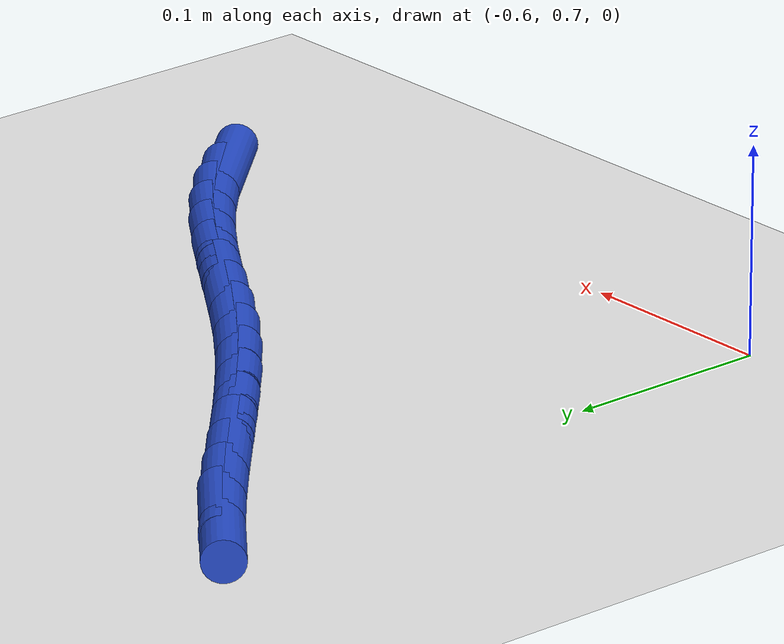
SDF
<sdf version="1.6">
 <world name="default">
  <model name="ground_plane">
   <static>1</static>
   <link name="link">
    <collision name="collision">
     <geometry><plane><normal>0 0 1</normal><size>100 100</size></plane></geometry>
     <surface><friction><ode><mu>100</mu><mu2>50</mu2></ode></friction></surface>
    </collision>
    <visual name="visual">
     <cast_shadows>0</cast_shadows>
     <geometry><plane><normal>0 0 1</normal><size>100 100</size></plane></geometry>
     <material>
      <script><uri>file://media/materials/scripts/gazebo.material</uri><name>Gazebo/WhiteGlow</name></script>
     </material>
    </visual>
   </link>
  </model>
  <model name="line">
   <link name="link_32">
    <pose>-0.29188922006585105 0.7497087334957746 0.01 0 1.57 -0.8264946027217694</pose>
    <collision name="collision">
     <geometry><cylinder><radius>0.01</radius><length>0.08</length></cylinder></geometry>
    </collision>
    <visual name="visual">
     <material>
      <script><name>Gazebo/Blue</name><uri>file://media/materials/scripts/gazebo.material</uri></script>
     </material>
     <geometry><cylinder><radius>0.01</radius><length>0.08</length></cylinder></geometry>
    </visual>
   </link>
   <link name="link_33">
    <pose>-0.3085845072054865 0.7678359059353737 0.01 0 1.57 -0.7543454025134546</pose>
    <collision name="collision">
     <geometry><cylinder><radius>0.01</radius><length>0.08</length></cylinder></geometry>
    </collision>
    <visual name="visual">
     <material>
      <script><name>Gazebo/Blue</name><uri>file://media/materials/scripts/gazebo.material</uri></script>
     </material>
     <geometry><cylinder><radius>0.01</radius><length>0.08</length></cylinder></geometry>
    </visual>
   </link>
   <link name="link_34">
    <pose>-0.3265219029304062 0.7846925046535169 0.01 0 1.57 -0.6880054036686947</pose>
    <collision name="collision">
     <geometry><cylinder><radius>0.01</radius><length>0.08</length></cylinder></geometry>
    </collision>
    <visual name="visual">
     <material>
      <script><name>Gazebo/Blue</name><uri>file://media/materials/scripts/gazebo.material</uri></script>
     </material>
     <geometry><cylinder><radius>0.01</radius><length>0.08</length></cylinder></geometry>
    </visual>
   </link>
   <link name="link_35">
    <pose>-0.3456320414955044 0.8004008156749937 0.01 0 1.57 -0.6392162142944259</pose>
    <collision name="collision">
     <geometry><cylinder><radius>0.01</radius><length>0.08</length></cylinder></geometry>
    </collision>
    <visual name="visual">
     <material>
      <script><name>Gazebo/Blue</name><uri>file://media/materials/scripts/gazebo.material</uri></script>
     </material>
     <geometry><cylinder><radius>0.01</radius><length>0.08</length></cylinder></geometry>
    </visual>
   </link>
   <link name="link_36">
    <pose>-0.3656754010465393 0.8152995711420333 0.01 0 1.57 -0.6082472600852731</pose>
    <collision name="collision">
     <geometry><cylinder><radius>0.01</radius><length>0.08</length></cylinder></geometry>
    </collision>
    <visual name="visual">
     <material>
      <script><name>Gazebo/Blue</name><uri>file://media/materials/scripts/gazebo.material</uri></script>
     </material>
     <geometry><cylinder><radius>0.01</radius><length>0.08</length></cylinder></geometry>
    </visual>
   </link>
   <link name="link_37">
    <pose>-0.38640658987141224 0.8297349699163937 0.01 0 1.57 -0.5945941688032522</pose>
    <collision name="collision">
     <geometry><cylinder><radius>0.01</radius><length>0.08</length></cylinder></geometry>
    </collision>
    <visual name="visual">
     <material>
      <script><name>Gazebo/Blue</name><uri>file://media/materials/scripts/gazebo.material</uri></script>
     </material>
     <geometry><cylinder><radius>0.01</radius><length>0.08</length></cylinder></geometry>
    </visual>
   </link>
   <link name="link_38">
    <pose>-0.40758021625802465 0.8440532108598324 0.01 0 1.57 -0.5976636535230972</pose>
    <collision name="collision">
     <geometry><cylinder><radius>0.01</radius><length>0.08</length></cylinder></geometry>
    </collision>
    <visual name="visual">
     <material>
      <script><name>Gazebo/Blue</name><uri>file://media/materials/scripts/gazebo.material</uri></script>
     </material>
     <geometry><cylinder><radius>0.01</radius><length>0.08</length></cylinder></geometry>
    </visual>
   </link>
   <link name="link_39">
    <pose>-0.42895088849427787 0.8586004928341079 0.01 0 1.57 -0.6168965279006676</pose>
    <collision name="collision">
     <geometry><cylinder><radius>0.01</radius><length>0.08</length></cylinder></geometry>
    </collision>
    <visual name="visual">
     <material>
      <script><name>Gazebo/Blue</name><uri>file://media/materials/scripts/gazebo.material</uri></script>
     </material>
     <geometry><cylinder><radius>0.01</radius><length>0.08</length></cylinder></geometry>
    </visual>
   </link>
   <link name="link_40">
    <pose>-0.4502732148680729 0.8737230147009769 0.01 0 1.57 -0.6514691453298563</pose>
    <collision name="collision">
     <geometry><cylinder><radius>0.01</radius><length>0.08</length></cylinder></geometry>
    </collision>
    <visual name="visual">
     <material>
      <script><name>Gazebo/Blue</name><uri>file://media/materials/scripts/gazebo.material</uri></script>
     </material>
     <geometry><cylinder><radius>0.01</radius><length>0.08</length></cylinder></geometry>
    </visual>
   </link>
   <link name="link_41">
    <pose>-0.4713052228606581 0.8897604502327771 0.01 0 1.57 -0.6899381625758085</pose>
    <collision name="collision">
     <geometry><cylinder><radius>0.01</radius><length>0.08</length></cylinder></geometry>
    </collision>
    <visual name="visual">
     <material>
      <script><name>Gazebo/Blue</name><uri>file://media/materials/scripts/gazebo.material</uri></script>
     </material>
     <geometry><cylinder><radius>0.01</radius><length>0.08</length></cylinder></geometry>
    </visual>
   </link>
   <link name="link_42">
    <pose>-0.49194212056158304 0.9067906817073801 0.01 0 1.57 -0.7182182246020294</pose>
    <collision name="collision">
     <geometry><cylinder><radius>0.01</radius><length>0.08</length></cylinder></geometry>
    </collision>
    <visual name="visual">
     <material>
      <script><name>Gazebo/Blue</name><uri>file://media/materials/scripts/gazebo.material</uri></script>
     </material>
     <geometry><cylinder><radius>0.01</radius><length>0.08</length></cylinder></geometry>
    </visual>
   </link>
   <link name="link_43">
    <pose>-0.5122598226105306 0.9245467362631078 0.01 0 1.57 -0.7359224903440341</pose>
    <collision name="collision">
     <geometry><cylinder><radius>0.01</radius><length>0.08</length></cylinder></geometry>
    </collision>
    <visual name="visual">
     <material>
      <script><name>Gazebo/Blue</name><uri>file://media/materials/scripts/gazebo.material</uri></script>
     </material>
     <geometry><cylinder><radius>0.01</radius><length>0.08</length></cylinder></geometry>
    </visual>
   </link>
   <link name="link_44">
    <pose>-0.5323465757926781 0.9427381067294724 0.01 0 1.57 -0.7434201676575527</pose>
    <collision name="collision">
     <geometry><cylinder><radius>0.01</radius><length>0.08</length></cylinder></geometry>
    </collision>
    <visual name="visual">
     <material>
      <script><name>Gazebo/Blue</name><uri>file://media/materials/scripts/gazebo.material</uri></script>
     </material>
     <geometry><cylinder><radius>0.01</radius><length>0.08</length></cylinder></geometry>
    </visual>
   </link>
   <link name="link_45">
    <pose>-0.5522906268932026 0.9610742859359854 0.01 0 1.57 -0.7408082115172868</pose>
    <collision name="collision">
     <geometry><cylinder><radius>0.01</radius><length>0.08</length></cylinder></geometry>
    </collision>
    <visual name="visual">
     <material>
      <script><name>Gazebo/Blue</name><uri>file://media/materials/scripts/gazebo.material</uri></script>
     </material>
     <geometry><cylinder><radius>0.01</radius><length>0.08</length></cylinder></geometry>
    </visual>
   </link>
   <link name="link_46">
    <pose>-0.5721802226972806 0.9792647667121582 0.01 0 1.57 -0.7278913982920897</pose>
    <collision name="collision">
     <geometry><cylinder><radius>0.01</radius><length>0.08</length></cylinder></geometry>
    </collision>
    <visual name="visual">
     <material>
      <script><name>Gazebo/Blue</name><uri>file://media/materials/scripts/gazebo.material</uri></script>
     </material>
     <geometry><cylinder><radius>0.01</radius><length>0.08</length></cylinder></geometry>
    </visual>
   </link>
   <link name="link_47">
    <pose>-0.5921036099900893 0.9970190418875027 0.01 0 1.57 -0.704173968811788</pose>
    <collision name="collision">
     <geometry><cylinder><radius>0.01</radius><length>0.08</length></cylinder></geometry>
    </collision>
    <visual name="visual">
     <material>
      <script><name>Gazebo/Blue</name><uri>file://media/materials/scripts/gazebo.material</uri></script>
     </material>
     <geometry><cylinder><radius>0.01</radius><length>0.08</length></cylinder></geometry>
    </visual>
   </link>
   <link name="link_48">
    <pose>-0.6121490355568059 1.0140466042915302 0.01 0 1.57 -0.6688667619999197</pose>
    <collision name="collision">
     <geometry><cylinder><radius>0.01</radius><length>0.08</length></cylinder></geometry>
    </collision>
    <visual name="visual">
     <material>
      <script><name>Gazebo/Blue</name><uri>file://media/materials/scripts/gazebo.material</uri></script>
     </material>
     <geometry><cylinder><radius>0.01</radius><length>0.08</length></cylinder></geometry>
    </visual>
   </link>
  </model>
 </world>
</sdf>
